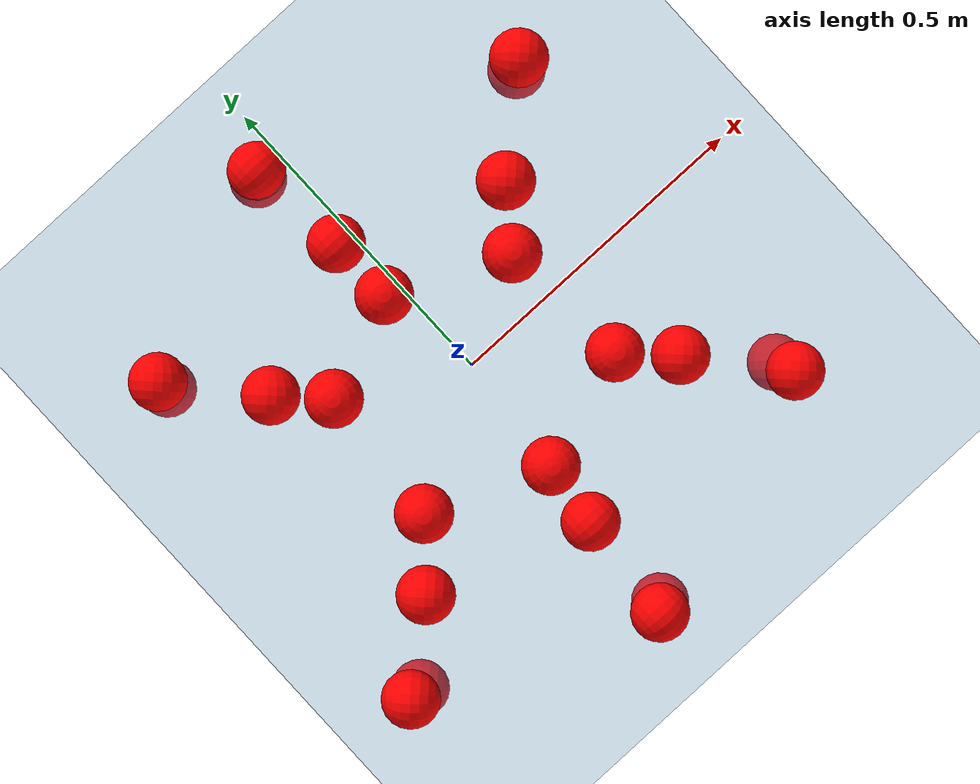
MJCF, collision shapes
<mujoco model="Golem">
  <compiler angle="radian" assetdir="assets" balanceinertia="true" inertiafromgeom="false"/>

  <option timestep="0.005" density="1.2" viscosity="2e-05"/>

  <size nkey="1"/>

  <visual>
    <quality shadowsize="8192"/>
    <map shadowclip="0.5"/>
  </visual>

  <default>
    <default class="/">
      <joint armature="0.01" damping="0.01" frictionloss="0.01"/>
      <geom contype="0" conaffinity="0" group="1" solref="-1000 -80"/>
      <site size="0.01 0.005 0.005" group="5"/>
      <general forcelimited="true" biastype="affine" gainprm="25" biasprm="0 -25 -0.5"/>
      <default class="visual">
        <geom type="mesh" group="2"/>
      </default>
      <default class="collision">
        <geom group="3"/>
      </default>
      <default class="foot">
        <geom size="0.01 0 0" condim="6" group="4" priority="1" solimp="0.015 1 0.01"/>
      </default>
      <default class="reward_collision_sphere">
        <geom group="5" rgba="1 0 0 1"/>
      </default>
    </default>
  </default>

  <asset>
    <texture type="skybox" colorspace="auto" name="//unnamed_texture_0" builtin="gradient" rgb1="0.95 0.95 0.95" rgb2="0.95 0.95 0.95" width="100" height="600"/>
    <texture type="2d" colorspace="auto" name="texplane" builtin="checker" rgb1="0.345 0.575 0.748" rgb2="0.345 0.575 0.748" markrgb="1 1 1" width="512" height="512"/>
    <material name="MatPlane" class="/" texture="texplane" texuniform="true" texrepeat="2 2" specular="0.9"/>
    <mesh name="body" class="/" file="body.stl" scale="0.001 0.001 0.001"/>
    <mesh name="coxa" class="/" file="coxa.stl" scale="0.001 0.001 0.001"/>
    <mesh name="femur" class="/" file="femur.stl" scale="0.001 0.001 0.001"/>
    <mesh name="tibia" class="/" file="tibia.stl" scale="0.001 0.001 0.001"/>
    <mesh name="tarsus" class="/" file="tarsus.stl" scale="0.001 0.001 0.001"/>
  </asset>

  <worldbody>
    <geom name="floor" class="/" size="100 100 0.125" type="plane" group="0" material="MatPlane"/>
    <light name="toplight_shadow" class="/" pos="0 0 5" dir="0.0990148 0.0990148 -0.990148" type="directional" ambient="0.04 0.04 0.04" diffuse="0.55 0.55 0.55" specular="0.12 0.12 0.12"/>
    <light name="toplight_fill" class="/" pos="0 0 5" dir="0.0990148 0.0990148 -0.990148" type="directional" castshadow="false" ambient="0.04 0.04 0.04" diffuse="0.3 0.3 0.3" specular="0.08 0.08 0.08"/>
    <body name="trunk" pos="-0.0141776 -0.00903341 -0.008357" quat="1 -0.000259555 -0.000191376 -0.000166852">
      <inertial pos="-0.00471315 -0.00348594 -0.00380625" quat="0.999998 0.000913757 -0.00168589 0.000328323" mass="5.18333" diaginertia="0.0286256 0.0974727 0.000687314"/>
      <joint name="//unnamed_joint_0" type="free"/>
      <geom name="//unnamed_geom_1" class="/" pos="0 0 0.0375601" quat="1 0 0 0" type="mesh" rgba="0.9 0.9 0.9 1" mesh="body"/>
      <site name="imu" class="/" pos="0.0859681 -0.064106 0.0328178" size="0.0110668"/>
      <camera name="track" class="/" pos="0 -3.12206 0" quat="0.707107 0.707107 0 0" mode="trackcom"/>
      <camera name="ego_camera" class="/" pos="0.152377 0 0.0586876" quat="-0.5 -0.5 0.5 0.5"/>
      <body name="coxa_RR" pos="-0.209042 -0.128641 0.0518527" quat="0.382537 3.22346e-05 2.46635e-05 -0.92394">
        <inertial pos="-0.000560048 0.0148828 0.00702684" quat="0.998629 0.00203264 -0.0492112 -0.0177241" mass="0.306862" diaginertia="0.0238357 0.100129 0.000757095"/>
        <joint name="coxa_joint_RR" class="/" pos="0 0 0" axis="0.0185233 -0.0307129 -0.999357" stiffness="0.0647345" range="-3.15925 3.14897" armature="0.017217" damping="0.0372947" frictionloss="0.0107034"/>
        <geom name="//unnamed_geom_2" class="/" type="mesh" rgba="0.2 0.2 0.2 1" mesh="coxa"/>
        <geom name="//unnamed_geom_3" class="reward_collision_sphere" size="0.0442672" pos="-0.035164 0 0"/>
        <body name="femur_RR" pos="0.083248 0.00793871 0.00290994" quat="0.49991 -0.499839 0.500187 0.500063">
          <inertial pos="0.00767273 0.00640419 8.40297e-05" quat="0.999644 -0.00510507 -0.0181532 0.0188874" mass="0.273259" diaginertia="0.0224635 0.0874263 0.000563306"/>
          <joint name="femur_joint_RR" class="/" pos="0 0 0" axis="0.0184835 0.0163574 -0.999695" stiffness="0.0671048" range="-2.88562 3.34518" armature="0.0136138" damping="0.0109997" frictionloss="0.00437627"/>
          <geom name="//unnamed_geom_4" class="/" type="mesh" rgba="0.9 0.9 0.9 1" mesh="femur"/>
          <geom name="//unnamed_geom_5" class="reward_collision_sphere" size="0.0442672"/>
          <body name="tibia_RR" pos="0.00997887 -0.154977 -0.0150967" quat="0.00330455 0.999973 0.00477923 -0.00448813">
            <inertial pos="0.0127301 0.00359171 -5.78256e-05" quat="0.999999 -0.000343896 0.000675556 0.00110411" mass="0.259042" diaginertia="0.0252448 0.109533 0.000867306"/>
            <joint name="tibia_joint_RR" class="/" pos="0 0 0" axis="0.00450715 0.0624525 0.998038" range="-3.28388 2.95274" armature="0.012726" damping="0.0268528" frictionloss="0.011198"/>
            <geom name="//unnamed_geom_6" class="/" type="mesh" rgba="0.2 0.2 0.2 1" mesh="tibia"/>
            <geom name="//unnamed_geom_7" class="reward_collision_sphere" size="0.0442672"/>
            <body name="tarsus_RR" pos="0.0915738 -0.00162183 -0.0122677" quat="1 -5.96902e-05 -0.000374012 -0.000199614">
              <inertial pos="0.0577821 0.000474538 -0.00751373" quat="0.498083 0.483612 0.51546 0.502328" mass="0.275122" diaginertia="0.020836 0.0842185 0.000711868"/>
              <joint name="tarsus_joint_RR" class="/" pos="0 0 0" axis="-4.75977e-06 -1.05899e-05 1" range="-2.88717 2.9453" armature="0.013709" damping="0.025948" frictionloss="0.0153163"/>
              <geom name="//unnamed_geom_8" class="/" type="mesh" rgba="0.9 0.9 0.9 1" mesh="tarsus"/>
              <geom name="foot_1" class="foot" size="0.0110147" pos="0.131279 0 0" quat="0 -0.707107 0 0.707107"/>
              <geom name="//unnamed_geom_10" class="reward_collision_sphere" size="0.0442672"/>
              <geom name="//unnamed_geom_11" class="reward_collision_sphere" size="0.0166002" pos="0.126004 0 0"/>
              <site name="foot_1" class="foot" pos="0.131279 0 0" quat="0 -0.707107 0 0.707107" size="0.0110668"/>
            </body>
          </body>
        </body>
      </body>
      <body name="coxa_RM" pos="0.000142507 -0.213787 0.032048" quat="0.705671 -0.00431184 -0.000168092 -0.708527">
        <inertial pos="-0.0107153 0.000820199 0.00744024" quat="0.999326 0.0265124 -0.00256174 0.0252591" mass="0.291155" diaginertia="0.0240721 0.108089 0.000600919"/>
        <joint name="coxa_joint_RM" class="/" pos="0 0 0" axis="0.0187935 -0.00552729 -0.999808" range="-3.0135 3.06844" armature="0.0103354" damping="0.0600049" frictionloss="0.0199002"/>
        <geom name="//unnamed_geom_12" class="/" type="mesh" rgba="0.2 0.2 0.2 1" mesh="coxa"/>
        <geom name="//unnamed_geom_13" class="reward_collision_sphere" size="0.0442672" pos="-0.035164 0 0"/>
        <body name="femur_RM" pos="0.0645425 -0.0121181 0.00565297" quat="0.497968 -0.496421 0.500036 0.505528">
          <inertial pos="-0.00425319 0.00678101 -0.000515117" quat="0.999552 -0.00400645 -0.0156105 -0.025233" mass="0.222412" diaginertia="0.0180109 0.0865463 0.000570341"/>
          <joint name="femur_joint_RM" class="/" pos="0 0 0" axis="-0.0225505 0.0392417 -0.998975" range="-3.17317 3.11836" armature="0.0152981" damping="0" frictionloss="0.0113134"/>
          <geom name="//unnamed_geom_14" class="/" type="mesh" rgba="0.9 0.9 0.9 1" mesh="femur"/>
          <geom name="//unnamed_geom_15" class="reward_collision_sphere" size="0.0442672"/>
          <body name="tibia_RM" pos="0.00238329 -0.167915 -0.0146598" quat="0.000289072 1 9.88627e-06 0.000255981">
            <inertial pos="-0.0100606 0.0146024 -0.00010434" quat="0.997885 -0.058167 -0.00751407 -0.0280322" mass="0.338414" diaginertia="0.0237853 0.0810859 0.000778186"/>
            <joint name="tibia_joint_RM" class="/" pos="0 0 0" axis="0.00769694 -0.00172192 0.999969" range="-2.87886 2.82134" armature="0.0119921" damping="0.015639" frictionloss="0.00874594"/>
            <geom name="//unnamed_geom_16" class="/" type="mesh" rgba="0.2 0.2 0.2 1" mesh="tibia"/>
            <geom name="//unnamed_geom_17" class="reward_collision_sphere" size="0.0442672"/>
            <body name="tarsus_RM" pos="0.10394 0.00350961 -0.00976681" quat="1 -0.000323265 -0.00016122 -0.000300479">
              <inertial pos="0.0664872 0.00991081 -0.0110419" quat="0.523224 0.436149 0.513468 0.521884" mass="0.219413" diaginertia="0.0253416 0.101956 0.000785888"/>
              <joint name="tarsus_joint_RM" class="/" pos="0 0 0" axis="-0.00478751 -0.00356993 0.999982" stiffness="0.0513177" range="-3.33066 3.23712" armature="0.00715525" damping="0.00513096" frictionloss="0.0108039"/>
              <geom name="//unnamed_geom_18" class="/" type="mesh" rgba="0.9 0.9 0.9 1" mesh="tarsus"/>
              <geom name="foot_2" class="foot" size="0.00911174" pos="0.131279 0 0" quat="0 -0.707107 0 0.707107"/>
              <geom name="//unnamed_geom_20" class="reward_collision_sphere" size="0.0442672"/>
              <geom name="//unnamed_geom_21" class="reward_collision_sphere" size="0.0166002" pos="0.126004 0 0"/>
              <site name="foot_2" class="foot" pos="0.131279 0 0" quat="0 -0.707107 0 0.707107" size="0.0110668"/>
            </body>
          </body>
        </body>
      </body>
      <body name="coxa_RF" pos="0.207827 -0.14401 0.0248289" quat="0.923871 -0.000400019 -0.000150666 -0.382703">
        <inertial pos="0.00539645 -0.00851193 -0.000491162" quat="0.999987 0.000229912 0.00197122 0.00471484" mass="0.259126" diaginertia="0.0219928 0.0824098 0.000727944"/>
        <joint name="coxa_joint_RF" class="/" pos="0 0 0" axis="0.0042692 -0.00448271 -0.999981" stiffness="0.00277936" range="-3.14779 3.04916" armature="0.00432177" damping="0.00422553" frictionloss="0.0103727"/>
        <geom name="//unnamed_geom_22" class="/" type="mesh" rgba="0.2 0.2 0.2 1" mesh="coxa"/>
        <geom name="//unnamed_geom_23" class="reward_collision_sphere" size="0.0442672" pos="-0.035164 0 0"/>
        <body name="femur_RF" pos="0.0617243 0.000512761 0.00230536" quat="0.502358 -0.498377 0.499047 0.500208">
          <inertial pos="-0.00675762 0.00967067 -0.000540879" quat="0.999389 0.0221541 -0.00871267 -0.02558" mass="0.300549" diaginertia="0.0219283 0.113231 0.000633382"/>
          <joint name="femur_joint_RF" class="/" pos="0 0 0" axis="-0.00235211 0.00376401 -0.99999" range="-2.84934 3.03033" armature="0.0185619" damping="0.00773307" frictionloss="0.00478895"/>
          <geom name="//unnamed_geom_24" class="/" type="mesh" rgba="0.9 0.9 0.9 1" mesh="femur"/>
          <geom name="//unnamed_geom_25" class="reward_collision_sphere" size="0.0442672"/>
          <body name="tibia_RF" pos="0.0113881 -0.17203 -0.01515" quat="2.44761e-05 1 -8.01948e-05 -3.87381e-05">
            <inertial pos="0.014996 0.00116838 0.00379579" quat="0.999994 0.00228117 -0.00169385 0.0019892" mass="0.214188" diaginertia="0.0234172 0.0777344 0.000652702"/>
            <joint name="tibia_joint_RF" class="/" pos="0 0 0" axis="0.0556283 0.0466973 0.997359" range="-3.04767 3.43171" armature="0.0141798" damping="0.00158594" frictionloss="0.0108133"/>
            <geom name="//unnamed_geom_26" class="/" type="mesh" rgba="0.2 0.2 0.2 1" mesh="tibia"/>
            <geom name="//unnamed_geom_27" class="reward_collision_sphere" size="0.0442672"/>
            <body name="tarsus_RF" pos="0.111914 -0.0135385 -0.0123076" quat="0.999976 0.000658197 -0.0055144 0.00417662">
              <inertial pos="0.0699479 -0.00369492 -0.000415072" quat="0.499509 0.498252 0.502528 0.499701" mass="0.280762" diaginertia="0.0214717 0.0983051 0.000627226"/>
              <joint name="tarsus_joint_RF" class="/" pos="0 0 0" axis="-0.0391326 -0.0255409 0.998908" stiffness="0.0322204" range="-3.00903 3.22858" armature="0.00637469" damping="0.00606187" frictionloss="0.0154857"/>
              <geom name="//unnamed_geom_28" class="/" type="mesh" rgba="0.9 0.9 0.9 1" mesh="tarsus"/>
              <geom name="foot_3" class="foot" size="0.0065227" pos="0.131279 0 0" quat="0 -0.707107 0 0.707107"/>
              <geom name="//unnamed_geom_30" class="reward_collision_sphere" size="0.0442672"/>
              <geom name="//unnamed_geom_31" class="reward_collision_sphere" size="0.0166002" pos="0.126004 0 0"/>
              <site name="foot_3" class="foot" pos="0.131279 0 0" quat="0 -0.707107 0 0.707107" size="0.0110668"/>
            </body>
          </body>
        </body>
      </body>
      <body name="coxa_LR" pos="-0.193879 0.134953 0.0350738" quat="0.382764 0.000834962 0.000572767 0.923845">
        <inertial pos="0.013656 -0.00798072 0.0155455" quat="0.997314 0.0482468 0.0534624 0.0133372" mass="0.264703" diaginertia="0.0190958 0.0644919 0.000561612"/>
        <joint name="coxa_joint_LR" class="/" pos="0 0 0" axis="-0.0676484 -0.0167043 -0.997569" range="-3.04045 3.30474" armature="0.0160026" damping="0.0265303" frictionloss="0.017522"/>
        <geom name="//unnamed_geom_32" class="/" type="mesh" rgba="0.2 0.2 0.2 1" mesh="coxa"/>
        <geom name="//unnamed_geom_33" class="reward_collision_sphere" size="0.0442672" pos="-0.035164 0 0"/>
        <body name="femur_LR" pos="0.0583548 -0.00055066 -0.00243384" quat="0.4999 -0.50003 0.499998 0.500073">
          <inertial pos="0.00636711 -0.001714 0.00178055" quat="0.999085 0.0260422 0.032852 0.00847287" mass="0.270612" diaginertia="0.0222403 0.0789502 0.000707925"/>
          <joint name="femur_joint_LR" class="/" pos="0 0 0" axis="0.0185814 -0.0416275 0.99896" range="-3.24388 3.16386" armature="0.00920639" damping="0" frictionloss="0.0194437"/>
          <geom name="//unnamed_geom_34" class="/" type="mesh" rgba="0.9 0.9 0.9 1" mesh="femur"/>
          <geom name="//unnamed_geom_35" class="reward_collision_sphere" size="0.0442672"/>
          <body name="tibia_LR" pos="0.0109775 -0.16862 -0.0127242" quat="-0.00500429 0.999978 -0.00359635 -0.00263971">
            <inertial pos="-0.000894633 -0.000873367 0.000242043" quat="0.999883 0.0118222 -0.00176955 0.00953151" mass="0.227116" diaginertia="0.0197121 0.0888322 0.000645105"/>
            <joint name="tibia_joint_LR" class="/" pos="0 0 0" axis="0.0427334 -0.00112391 -0.999086" range="-2.97707 3.37102" armature="0.0118312" damping="0.0225676" frictionloss="0.0102878"/>
            <geom name="//unnamed_geom_36" class="/" type="mesh" rgba="0.2 0.2 0.2 1" mesh="tibia"/>
            <geom name="//unnamed_geom_37" class="reward_collision_sphere" size="0.0442672"/>
            <body name="tarsus_LR" pos="0.115915 0.0012217 -0.0113677" quat="0.999976 -0.00627573 0.00068888 -0.00294038">
              <inertial pos="0.0553634 0.000121321 0.0148777" quat="0.500028 0.501688 0.501313 0.496958" mass="0.282609" diaginertia="0.0207933 0.0978179 0.000659249"/>
              <joint name="tarsus_joint_LR" class="/" pos="0 0 0" axis="0.0648339 -0.004285 -0.997887" stiffness="0.00368287" range="-2.89495 3.38351" armature="0.0099888" damping="0.0368375" frictionloss="0.00776176"/>
              <geom name="//unnamed_geom_38" class="/" type="mesh" rgba="0.9 0.9 0.9 1" mesh="tarsus"/>
              <geom name="foot_4" class="foot" size="0.00736723" pos="0.131279 0 0" quat="0.707107 0 -0.707107 0"/>
              <geom name="//unnamed_geom_40" class="reward_collision_sphere" size="0.0442672"/>
              <geom name="//unnamed_geom_41" class="reward_collision_sphere" size="0.0166002" pos="0.126004 0 0"/>
              <site name="foot_4" class="foot" pos="0.131279 0 0" quat="0.707107 0 -0.707107 0" size="0.0110668"/>
            </body>
          </body>
        </body>
      </body>
      <body name="coxa_LM" pos="-0.0114891 0.208594 0.0252509" quat="0.706791 0.000862803 0.00365664 0.707412">
        <inertial pos="-0.00462985 0.00596527 0.00162928" quat="0.998828 -0.0213576 -0.00791476 0.0427004" mass="0.293102" diaginertia="0.0263102 0.0967035 0.000738891"/>
        <joint name="coxa_joint_LM" class="/" pos="0 0 0" axis="0.0134389 9.4144e-05 -0.99991" stiffness="0.0472536" range="-3.38226 3.11877" armature="0.00686617" damping="0" frictionloss="0.00465549"/>
        <geom name="//unnamed_geom_42" class="/" type="mesh" rgba="0.2 0.2 0.2 1" mesh="coxa"/>
        <geom name="//unnamed_geom_43" class="reward_collision_sphere" size="0.0442672" pos="-0.035164 0 0"/>
        <body name="femur_LM" pos="0.070436 0.000757795 -0.0147173" quat="0.496957 -0.503434 0.497988 0.501593">
          <inertial pos="-0.00766348 0.01222 -0.0153439" quat="0.997516 0.00819325 0.0175075 -0.067729" mass="0.255852" diaginertia="0.0186637 0.104364 0.00060256"/>
          <joint name="femur_joint_LM" class="/" pos="0 0 0" axis="-0.010127 -0.0468583 0.99885" range="-3.1173 3.37377" armature="0.00661875" damping="0" frictionloss="0.0115686"/>
          <geom name="//unnamed_geom_44" class="/" type="mesh" rgba="0.9 0.9 0.9 1" mesh="femur"/>
          <geom name="//unnamed_geom_45" class="reward_collision_sphere" size="0.0442672"/>
          <body name="tibia_LM" pos="0.00830337 -0.161051 0.0126317" quat="-0.00194644 0.99997 -0.00408203 -0.0062112">
            <inertial pos="-0.00393634 0.015978 -0.00555295" quat="0.998787 0.00130343 -0.0475392 -0.0127342" mass="0.291396" diaginertia="0.0204912 0.0773786 0.000645109"/>
            <joint name="tibia_joint_LM" class="/" pos="0 0 0" axis="-0.00648937 -0.00394621 -0.999971" stiffness="0.0192247" range="-3.1319 3.03098" armature="0.00440422" damping="0.0783365" frictionloss="0.0156709"/>
            <geom name="//unnamed_geom_46" class="/" type="mesh" rgba="0.2 0.2 0.2 1" mesh="tibia"/>
            <geom name="//unnamed_geom_47" class="reward_collision_sphere" size="0.0442672"/>
            <body name="tarsus_LM" pos="0.1057 0.00375422 -0.00947851" quat="0.999968 -0.000172506 0.00765798 0.00214023">
              <inertial pos="0.0806855 0.000294705 0.0082732" quat="0.498529 0.499898 0.500397 0.501172" mass="0.281963" diaginertia="0.0285019 0.115839 0.000716192"/>
              <joint name="tarsus_joint_LM" class="/" pos="0 0 0" axis="-0.00363547 -0.00376945 -0.999986" stiffness="0.00960939" range="-3.44446 3.04988" armature="0.00392004" damping="0.0868793" frictionloss="0.00739171"/>
              <geom name="//unnamed_geom_48" class="/" type="mesh" rgba="0.9 0.9 0.9 1" mesh="tarsus"/>
              <geom name="foot_5" class="foot" size="0.00845559" pos="0.131279 0 0" quat="0.707107 0 -0.707107 0"/>
              <geom name="//unnamed_geom_50" class="reward_collision_sphere" size="0.0442672"/>
              <geom name="//unnamed_geom_51" class="reward_collision_sphere" size="0.0166002" pos="0.126004 0 0"/>
              <site name="foot_5" class="foot" pos="0.131279 0 0" quat="0.707107 0 -0.707107 0" size="0.0110668"/>
            </body>
          </body>
        </body>
      </body>
      <body name="coxa_LF" pos="0.193325 0.115397 0.0521443" quat="0.923858 -0.0007192 6.30966e-05 0.382734">
        <inertial pos="0.00140231 -0.00162068 0.0064853" quat="0.998684 -0.0177981 -0.0101009 -0.0470362" mass="0.355421" diaginertia="0.0257771 0.110163 0.000849751"/>
        <joint name="coxa_joint_LF" class="/" pos="0 0 0" axis="-0.0076501 0.0010594 -0.99997" stiffness="0.0057196" range="-2.99483 2.8358" armature="0.00449527" damping="0.0875893" frictionloss="0.0166107"/>
        <geom name="//unnamed_geom_52" class="/" type="mesh" rgba="0.2 0.2 0.2 1" mesh="coxa"/>
        <geom name="//unnamed_geom_53" class="reward_collision_sphere" size="0.0442672" pos="-0.035164 0 0"/>
        <body name="femur_LF" pos="0.0709282 0.0139249 -0.00252693" quat="0.501002 -0.494852 0.504374 0.499725">
          <inertial pos="-0.0149574 0.00080544 -0.00126164" quat="0.999719 0.00790154 -0.00384957 -0.0220281" mass="0.300383" diaginertia="0.0238333 0.0982076 0.000828965"/>
          <joint name="femur_joint_LF" class="/" pos="0 0 0" axis="-0.00165285 -0.0044746 0.999989" range="-3.32851 3.06755" armature="0.00445911" damping="0" frictionloss="0.0135687"/>
          <geom name="//unnamed_geom_54" class="/" type="mesh" rgba="0.9 0.9 0.9 1" mesh="femur"/>
          <geom name="//unnamed_geom_55" class="reward_collision_sphere" size="0.0442672"/>
          <body name="tibia_LF" pos="0.00640314 -0.18195 -0.00935427" quat="0.000664489 1 0.000374927 0.000382902">
            <inertial pos="0.00229143 -0.0109137 -0.00713275" quat="0.999688 0.0155887 0.000450288 0.0194997" mass="0.292686" diaginertia="0.0232306 0.0897594 0.000696391"/>
            <joint name="tibia_joint_LF" class="/" pos="0 0 0" axis="-0.0153633 0.00316409 -0.999877" stiffness="0.0438563" range="-3.15635 3.10801" armature="0.0167231" damping="0.0559294" frictionloss="0.00664684"/>
            <geom name="//unnamed_geom_56" class="/" type="mesh" rgba="0.2 0.2 0.2 1" mesh="tibia"/>
            <geom name="//unnamed_geom_57" class="reward_collision_sphere" size="0.0442672"/>
            <body name="tarsus_LF" pos="0.0979 -0.0019518 -0.00166816" quat="0.999975 -0.0011188 0.00353052 -0.00603462">
              <inertial pos="0.0695175 -0.000588254 0.00770394" quat="0.49315 0.488834 0.471867 0.54331" mass="0.227652" diaginertia="0.020385 0.0742945 0.000588451"/>
              <joint name="tarsus_joint_LF" class="/" pos="0 0 0" axis="-0.0181266 -0.0348826 -0.999227" range="-2.91349 2.98528" armature="0.01161" damping="0.0845275" frictionloss="0.0118347"/>
              <geom name="//unnamed_geom_58" class="/" type="mesh" rgba="0.9 0.9 0.9 1" mesh="tarsus"/>
              <geom name="foot_6" class="foot" size="0.0103434" pos="0.131279 0 0" quat="0.707107 0 -0.707107 0"/>
              <geom name="//unnamed_geom_60" class="reward_collision_sphere" size="0.0442672"/>
              <geom name="//unnamed_geom_61" class="reward_collision_sphere" size="0.0166002" pos="0.126004 0 0"/>
              <site name="foot_6" class="foot" pos="0.131279 0 0" quat="0.707107 0 -0.707107 0" size="0.0110668"/>
            </body>
          </body>
        </body>
      </body>
    </body>
  </worldbody>

  <contact>
    <pair class="/" geom1="floor" geom2="foot_1" name="//unnamed_contact_0"/>
    <pair class="/" geom1="floor" geom2="foot_2" name="//unnamed_contact_1"/>
    <pair class="/" geom1="floor" geom2="foot_3" name="//unnamed_contact_2"/>
    <pair class="/" geom1="floor" geom2="foot_4" name="//unnamed_contact_3"/>
    <pair class="/" geom1="floor" geom2="foot_5" name="//unnamed_contact_4"/>
    <pair class="/" geom1="floor" geom2="foot_6" name="//unnamed_contact_5"/>
  </contact>

  <actuator>
    <general name="coxa_joint_RR" class="/" joint="coxa_joint_RR" forcerange="-7.4851 7.4851" gainprm="24.2298" biasprm="0 -24.2298 -0.582165"/>
    <general name="femur_joint_RR" class="/" joint="femur_joint_RR" forcerange="-7.75978 7.75978" gainprm="24.2298" biasprm="0 -24.2298 -0.582165"/>
    <general name="tibia_joint_RR" class="/" joint="tibia_joint_RR" forcerange="-8.28972 8.28972" gainprm="24.2298" biasprm="0 -24.2298 -0.582165"/>
    <general name="tarsus_joint_RR" class="/" joint="tarsus_joint_RR" forcerange="-4.7097 4.7097" gainprm="24.2298" biasprm="0 -24.2298 -0.582165"/>
    <general name="coxa_joint_RM" class="/" joint="coxa_joint_RM" forcerange="-12.517 12.517" gainprm="24.2298" biasprm="0 -24.2298 -0.582165"/>
    <general name="femur_joint_RM" class="/" joint="femur_joint_RM" forcerange="-9.20338 9.20338" gainprm="24.2298" biasprm="0 -24.2298 -0.582165"/>
    <general name="tibia_joint_RM" class="/" joint="tibia_joint_RM" forcerange="-10.9106 10.9106" gainprm="24.2298" biasprm="0 -24.2298 -0.582165"/>
    <general name="tarsus_joint_RM" class="/" joint="tarsus_joint_RM" forcerange="-7.53293 7.53293" gainprm="24.2298" biasprm="0 -24.2298 -0.582165"/>
    <general name="coxa_joint_RF" class="/" joint="coxa_joint_RF" forcerange="-12.2636 12.2636" gainprm="24.2298" biasprm="0 -24.2298 -0.582165"/>
    <general name="femur_joint_RF" class="/" joint="femur_joint_RF" forcerange="-10.6618 10.6618" gainprm="24.2298" biasprm="0 -24.2298 -0.582165"/>
    <general name="tibia_joint_RF" class="/" joint="tibia_joint_RF" forcerange="-12.6825 12.6825" gainprm="24.2298" biasprm="0 -24.2298 -0.582165"/>
    <general name="tarsus_joint_RF" class="/" joint="tarsus_joint_RF" forcerange="-5.61459 5.61459" gainprm="24.2298" biasprm="0 -24.2298 -0.582165"/>
    <general name="coxa_joint_LR" class="/" joint="coxa_joint_LR" forcerange="-8.19651 8.19651" gainprm="24.2298" biasprm="0 -24.2298 -0.582165"/>
    <general name="femur_joint_LR" class="/" joint="femur_joint_LR" forcerange="-7.86037 7.86037" gainprm="24.2298" biasprm="0 -24.2298 -0.582165"/>
    <general name="tibia_joint_LR" class="/" joint="tibia_joint_LR" forcerange="-8.29389 8.29389" gainprm="24.2298" biasprm="0 -24.2298 -0.582165"/>
    <general name="tarsus_joint_LR" class="/" joint="tarsus_joint_LR" forcerange="-6.25166 6.25166" gainprm="24.2298" biasprm="0 -24.2298 -0.582165"/>
    <general name="coxa_joint_LM" class="/" joint="coxa_joint_LM" forcerange="-4.44292 4.44292" gainprm="24.2298" biasprm="0 -24.2298 -0.582165"/>
    <general name="femur_joint_LM" class="/" joint="femur_joint_LM" forcerange="-8.19992 8.19992" gainprm="24.2298" biasprm="0 -24.2298 -0.582165"/>
    <general name="tibia_joint_LM" class="/" joint="tibia_joint_LM" forcerange="-8.58921 8.58921" gainprm="24.2298" biasprm="0 -24.2298 -0.582165"/>
    <general name="tarsus_joint_LM" class="/" joint="tarsus_joint_LM" forcerange="-7.83988 7.83988" gainprm="24.2298" biasprm="0 -24.2298 -0.582165"/>
    <general name="coxa_joint_LF" class="/" joint="coxa_joint_LF" forcerange="-12.7785 12.7785" gainprm="24.2298" biasprm="0 -24.2298 -0.582165"/>
    <general name="femur_joint_LF" class="/" joint="femur_joint_LF" forcerange="-8.08129 8.08129" gainprm="24.2298" biasprm="0 -24.2298 -0.582165"/>
    <general name="tibia_joint_LF" class="/" joint="tibia_joint_LF" forcerange="-6.84786 6.84786" gainprm="24.2298" biasprm="0 -24.2298 -0.582165"/>
    <general name="tarsus_joint_LF" class="/" joint="tarsus_joint_LF" forcerange="-10.6794 10.6794" gainprm="24.2298" biasprm="0 -24.2298 -0.582165"/>
  </actuator>

  <sensor>
    <gyro site="imu" name="imu_angular_velocity"/>
    <velocimeter site="imu" name="imu_linear_velocity"/>
    <framelinvel objtype="site" objname="foot_1" name="foot_1_global_linear_velocity"/>
    <framelinvel objtype="site" objname="foot_2" name="foot_2_global_linear_velocity"/>
    <framelinvel objtype="site" objname="foot_3" name="foot_3_global_linear_velocity"/>
    <framelinvel objtype="site" objname="foot_4" name="foot_4_global_linear_velocity"/>
    <framelinvel objtype="site" objname="foot_5" name="foot_5_global_linear_velocity"/>
    <framelinvel objtype="site" objname="foot_6" name="foot_6_global_linear_velocity"/>
  </sensor>

  <keyframe>
    <key name="home" qpos="0 0 0.1457 1 0 0 0 0 0 0 0 0 0 0 0 0 0 0 0 0 0 0 0 0 0 0 0 0 0 0 0"/>
  </keyframe>
</mujoco>
